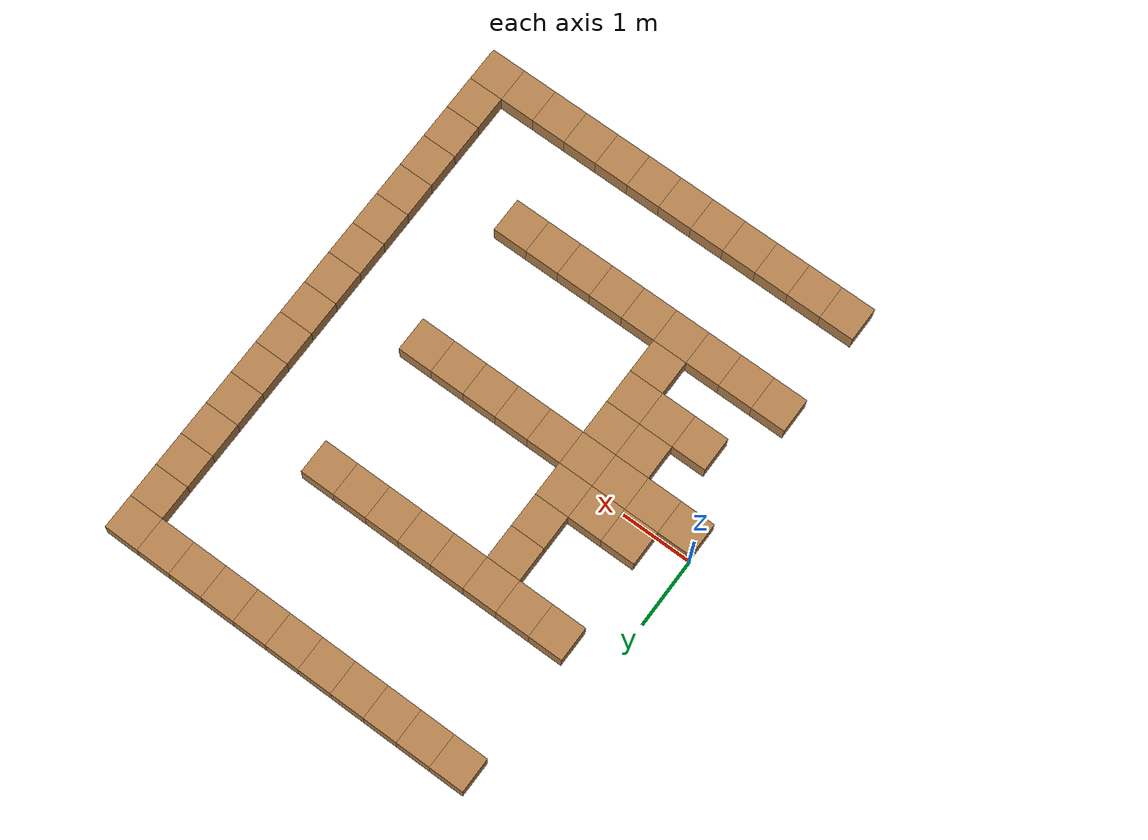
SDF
<sdf version="1.7">
 <world name="default">
  <model name="tile_0_13">
   <pose>0.75 3.75 0.15 0 0 0</pose>
   <static>true</static>
   <link name="link">
    <collision name="col"><geometry><box><size>0.5 0.5 0.3</size></box></geometry></collision>
    <visual name="vis">
     <geometry><box><size>0.5 0.5 0.3</size></box></geometry>
     <material>
      <ambient>0.30 0.20 0.10 1</ambient>
      <diffuse>0.70 0.50 0.30 1</diffuse>
      <specular>0.10 0.10 0.10 1</specular>
     </material>
    </visual>
   </link>
  </model>
  <model name="tile_0_14">
   <pose>1.25 3.75 0.15 0 0 0</pose>
   <static>true</static>
   <link name="link">
    <collision name="col"><geometry><box><size>0.5 0.5 0.3</size></box></geometry></collision>
    <visual name="vis">
     <geometry><box><size>0.5 0.5 0.3</size></box></geometry>
     <material>
      <ambient>0.30 0.20 0.10 1</ambient>
      <diffuse>0.70 0.50 0.30 1</diffuse>
      <specular>0.10 0.10 0.10 1</specular>
     </material>
    </visual>
   </link>
  </model>
  <model name="tile_0_15">
   <pose>1.75 3.75 0.15 0 0 0</pose>
   <static>true</static>
   <link name="link">
    <collision name="col"><geometry><box><size>0.5 0.5 0.3</size></box></geometry></collision>
    <visual name="vis">
     <geometry><box><size>0.5 0.5 0.3</size></box></geometry>
     <material>
      <ambient>0.30 0.20 0.10 1</ambient>
      <diffuse>0.70 0.50 0.30 1</diffuse>
      <specular>0.10 0.10 0.10 1</specular>
     </material>
    </visual>
   </link>
  </model>
  <model name="tile_0_16">
   <pose>2.25 3.75 0.15 0 0 0</pose>
   <static>true</static>
   <link name="link">
    <collision name="col"><geometry><box><size>0.5 0.5 0.3</size></box></geometry></collision>
    <visual name="vis">
     <geometry><box><size>0.5 0.5 0.3</size></box></geometry>
     <material>
      <ambient>0.30 0.20 0.10 1</ambient>
      <diffuse>0.70 0.50 0.30 1</diffuse>
      <specular>0.10 0.10 0.10 1</specular>
     </material>
    </visual>
   </link>
  </model>
  <model name="tile_0_17">
   <pose>2.75 3.75 0.15 0 0 0</pose>
   <static>true</static>
   <link name="link">
    <collision name="col"><geometry><box><size>0.5 0.5 0.3</size></box></geometry></collision>
    <visual name="vis">
     <geometry><box><size>0.5 0.5 0.3</size></box></geometry>
     <material>
      <ambient>0.30 0.20 0.10 1</ambient>
      <diffuse>0.70 0.50 0.30 1</diffuse>
      <specular>0.10 0.10 0.10 1</specular>
     </material>
    </visual>
   </link>
  </model>
  <model name="tile_0_18">
   <pose>3.25 3.75 0.15 0 0 0</pose>
   <static>true</static>
   <link name="link">
    <collision name="col"><geometry><box><size>0.5 0.5 0.3</size></box></geometry></collision>
    <visual name="vis">
     <geometry><box><size>0.5 0.5 0.3</size></box></geometry>
     <material>
      <ambient>0.30 0.20 0.10 1</ambient>
      <diffuse>0.70 0.50 0.30 1</diffuse>
      <specular>0.10 0.10 0.10 1</specular>
     </material>
    </visual>
   </link>
  </model>
  <model name="tile_0_19">
   <pose>3.75 3.75 0.15 0 0 0</pose>
   <static>true</static>
   <link name="link">
    <collision name="col"><geometry><box><size>0.5 0.5 0.3</size></box></geometry></collision>
    <visual name="vis">
     <geometry><box><size>0.5 0.5 0.3</size></box></geometry>
     <material>
      <ambient>0.30 0.20 0.10 1</ambient>
      <diffuse>0.70 0.50 0.30 1</diffuse>
      <specular>0.10 0.10 0.10 1</specular>
     </material>
    </visual>
   </link>
  </model>
  <model name="tile_0_20">
   <pose>4.25 3.75 0.15 0 0 0</pose>
   <static>true</static>
   <link name="link">
    <collision name="col"><geometry><box><size>0.5 0.5 0.3</size></box></geometry></collision>
    <visual name="vis">
     <geometry><box><size>0.5 0.5 0.3</size></box></geometry>
     <material>
      <ambient>0.30 0.20 0.10 1</ambient>
      <diffuse>0.70 0.50 0.30 1</diffuse>
      <specular>0.10 0.10 0.10 1</specular>
     </material>
    </visual>
   </link>
  </model>
  <model name="tile_0_21">
   <pose>4.75 3.75 0.15 0 0 0</pose>
   <static>true</static>
   <link name="link">
    <collision name="col"><geometry><box><size>0.5 0.5 0.3</size></box></geometry></collision>
    <visual name="vis">
     <geometry><box><size>0.5 0.5 0.3</size></box></geometry>
     <material>
      <ambient>0.30 0.20 0.10 1</ambient>
      <diffuse>0.70 0.50 0.30 1</diffuse>
      <specular>0.10 0.10 0.10 1</specular>
     </material>
    </visual>
   </link>
  </model>
  <model name="tile_0_22">
   <pose>5.25 3.75 0.15 0 0 0</pose>
   <static>true</static>
   <link name="link">
    <collision name="col"><geometry><box><size>0.5 0.5 0.3</size></box></geometry></collision>
    <visual name="vis">
     <geometry><box><size>0.5 0.5 0.3</size></box></geometry>
     <material>
      <ambient>0.30 0.20 0.10 1</ambient>
      <diffuse>0.70 0.50 0.30 1</diffuse>
      <specular>0.10 0.10 0.10 1</specular>
     </material>
    </visual>
   </link>
  </model>
  <model name="tile_0_23">
   <pose>5.75 3.75 0.15 0 0 0</pose>
   <static>true</static>
   <link name="link">
    <collision name="col"><geometry><box><size>0.5 0.5 0.3</size></box></geometry></collision>
    <visual name="vis">
     <geometry><box><size>0.5 0.5 0.3</size></box></geometry>
     <material>
      <ambient>0.30 0.20 0.10 1</ambient>
      <diffuse>0.70 0.50 0.30 1</diffuse>
      <specular>0.10 0.10 0.10 1</specular>
     </material>
    </visual>
   </link>
  </model>
  <model name="tile_1_23">
   <pose>5.75 3.25 0.15 0 0 0</pose>
   <static>true</static>
   <link name="link">
    <collision name="col"><geometry><box><size>0.5 0.5 0.3</size></box></geometry></collision>
    <visual name="vis">
     <geometry><box><size>0.5 0.5 0.3</size></box></geometry>
     <material>
      <ambient>0.30 0.20 0.10 1</ambient>
      <diffuse>0.70 0.50 0.30 1</diffuse>
      <specular>0.10 0.10 0.10 1</specular>
     </material>
    </visual>
   </link>
  </model>
  <model name="tile_2_23">
   <pose>5.75 2.75 0.15 0 0 0</pose>
   <static>true</static>
   <link name="link">
    <collision name="col"><geometry><box><size>0.5 0.5 0.3</size></box></geometry></collision>
    <visual name="vis">
     <geometry><box><size>0.5 0.5 0.3</size></box></geometry>
     <material>
      <ambient>0.30 0.20 0.10 1</ambient>
      <diffuse>0.70 0.50 0.30 1</diffuse>
      <specular>0.10 0.10 0.10 1</specular>
     </material>
    </visual>
   </link>
  </model>
  <model name="tile_3_23">
   <pose>5.75 2.25 0.15 0 0 0</pose>
   <static>true</static>
   <link name="link">
    <collision name="col"><geometry><box><size>0.5 0.5 0.3</size></box></geometry></collision>
    <visual name="vis">
     <geometry><box><size>0.5 0.5 0.3</size></box></geometry>
     <material>
      <ambient>0.30 0.20 0.10 1</ambient>
      <diffuse>0.70 0.50 0.30 1</diffuse>
      <specular>0.10 0.10 0.10 1</specular>
     </material>
    </visual>
   </link>
  </model>
  <model name="tile_4_13">
   <pose>0.75 1.75 0.15 0 0 0</pose>
   <static>true</static>
   <link name="link">
    <collision name="col"><geometry><box><size>0.5 0.5 0.3</size></box></geometry></collision>
    <visual name="vis">
     <geometry><box><size>0.5 0.5 0.3</size></box></geometry>
     <material>
      <ambient>0.30 0.20 0.10 1</ambient>
      <diffuse>0.70 0.50 0.30 1</diffuse>
      <specular>0.10 0.10 0.10 1</specular>
     </material>
    </visual>
   </link>
  </model>
  <model name="tile_4_14">
   <pose>1.25 1.75 0.15 0 0 0</pose>
   <static>true</static>
   <link name="link">
    <collision name="col"><geometry><box><size>0.5 0.5 0.3</size></box></geometry></collision>
    <visual name="vis">
     <geometry><box><size>0.5 0.5 0.3</size></box></geometry>
     <material>
      <ambient>0.30 0.20 0.10 1</ambient>
      <diffuse>0.70 0.50 0.30 1</diffuse>
      <specular>0.10 0.10 0.10 1</specular>
     </material>
    </visual>
   </link>
  </model>
  <model name="tile_4_15">
   <pose>1.75 1.75 0.15 0 0 0</pose>
   <static>true</static>
   <link name="link">
    <collision name="col"><geometry><box><size>0.5 0.5 0.3</size></box></geometry></collision>
    <visual name="vis">
     <geometry><box><size>0.5 0.5 0.3</size></box></geometry>
     <material>
      <ambient>0.30 0.20 0.10 1</ambient>
      <diffuse>0.70 0.50 0.30 1</diffuse>
      <specular>0.10 0.10 0.10 1</specular>
     </material>
    </visual>
   </link>
  </model>
  <model name="tile_4_16">
   <pose>2.25 1.75 0.15 0 0 0</pose>
   <static>true</static>
   <link name="link">
    <collision name="col"><geometry><box><size>0.5 0.5 0.3</size></box></geometry></collision>
    <visual name="vis">
     <geometry><box><size>0.5 0.5 0.3</size></box></geometry>
     <material>
      <ambient>0.30 0.20 0.10 1</ambient>
      <diffuse>0.70 0.50 0.30 1</diffuse>
      <specular>0.10 0.10 0.10 1</specular>
     </material>
    </visual>
   </link>
  </model>
  <model name="tile_4_17">
   <pose>2.75 1.75 0.15 0 0 0</pose>
   <static>true</static>
   <link name="link">
    <collision name="col"><geometry><box><size>0.5 0.5 0.3</size></box></geometry></collision>
    <visual name="vis">
     <geometry><box><size>0.5 0.5 0.3</size></box></geometry>
     <material>
      <ambient>0.30 0.20 0.10 1</ambient>
      <diffuse>0.70 0.50 0.30 1</diffuse>
      <specular>0.10 0.10 0.10 1</specular>
     </material>
    </visual>
   </link>
  </model>
  <model name="tile_4_18">
   <pose>3.25 1.75 0.15 0 0 0</pose>
   <static>true</static>
   <link name="link">
    <collision name="col"><geometry><box><size>0.5 0.5 0.3</size></box></geometry></collision>
    <visual name="vis">
     <geometry><box><size>0.5 0.5 0.3</size></box></geometry>
     <material>
      <ambient>0.30 0.20 0.10 1</ambient>
      <diffuse>0.70 0.50 0.30 1</diffuse>
      <specular>0.10 0.10 0.10 1</specular>
     </material>
    </visual>
   </link>
  </model>
  <model name="tile_4_19">
   <pose>3.75 1.75 0.15 0 0 0</pose>
   <static>true</static>
   <link name="link">
    <collision name="col"><geometry><box><size>0.5 0.5 0.3</size></box></geometry></collision>
    <visual name="vis">
     <geometry><box><size>0.5 0.5 0.3</size></box></geometry>
     <material>
      <ambient>0.30 0.20 0.10 1</ambient>
      <diffuse>0.70 0.50 0.30 1</diffuse>
      <specular>0.10 0.10 0.10 1</specular>
     </material>
    </visual>
   </link>
  </model>
  <model name="tile_4_20">
   <pose>4.25 1.75 0.15 0 0 0</pose>
   <static>true</static>
   <link name="link">
    <collision name="col"><geometry><box><size>0.5 0.5 0.3</size></box></geometry></collision>
    <visual name="vis">
     <geometry><box><size>0.5 0.5 0.3</size></box></geometry>
     <material>
      <ambient>0.30 0.20 0.10 1</ambient>
      <diffuse>0.70 0.50 0.30 1</diffuse>
      <specular>0.10 0.10 0.10 1</specular>
     </material>
    </visual>
   </link>
  </model>
  <model name="tile_4_23">
   <pose>5.75 1.75 0.15 0 0 0</pose>
   <static>true</static>
   <link name="link">
    <collision name="col"><geometry><box><size>0.5 0.5 0.3</size></box></geometry></collision>
    <visual name="vis">
     <geometry><box><size>0.5 0.5 0.3</size></box></geometry>
     <material>
      <ambient>0.30 0.20 0.10 1</ambient>
      <diffuse>0.70 0.50 0.30 1</diffuse>
      <specular>0.10 0.10 0.10 1</specular>
     </material>
    </visual>
   </link>
  </model>
  <model name="tile_5_15">
   <pose>1.75 1.25 0.15 0 0 0</pose>
   <static>true</static>
   <link name="link">
    <collision name="col"><geometry><box><size>0.5 0.5 0.3</size></box></geometry></collision>
    <visual name="vis">
     <geometry><box><size>0.5 0.5 0.3</size></box></geometry>
     <material>
      <ambient>0.30 0.20 0.10 1</ambient>
      <diffuse>0.70 0.50 0.30 1</diffuse>
      <specular>0.10 0.10 0.10 1</specular>
     </material>
    </visual>
   </link>
  </model>
  <model name="tile_5_23">
   <pose>5.75 1.25 0.15 0 0 0</pose>
   <static>true</static>
   <link name="link">
    <collision name="col"><geometry><box><size>0.5 0.5 0.3</size></box></geometry></collision>
    <visual name="vis">
     <geometry><box><size>0.5 0.5 0.3</size></box></geometry>
     <material>
      <ambient>0.30 0.20 0.10 1</ambient>
      <diffuse>0.70 0.50 0.30 1</diffuse>
      <specular>0.10 0.10 0.10 1</specular>
     </material>
    </visual>
   </link>
  </model>
  <model name="tile_6_15">
   <pose>1.75 0.75 0.15 0 0 0</pose>
   <static>true</static>
   <link name="link">
    <collision name="col"><geometry><box><size>0.5 0.5 0.3</size></box></geometry></collision>
    <visual name="vis">
     <geometry><box><size>0.5 0.5 0.3</size></box></geometry>
     <material>
      <ambient>0.30 0.20 0.10 1</ambient>
      <diffuse>0.70 0.50 0.30 1</diffuse>
      <specular>0.10 0.10 0.10 1</specular>
     </material>
    </visual>
   </link>
  </model>
  <model name="tile_6_23">
   <pose>5.75 0.75 0.15 0 0 0</pose>
   <static>true</static>
   <link name="link">
    <collision name="col"><geometry><box><size>0.5 0.5 0.3</size></box></geometry></collision>
    <visual name="vis">
     <geometry><box><size>0.5 0.5 0.3</size></box></geometry>
     <material>
      <ambient>0.30 0.20 0.10 1</ambient>
      <diffuse>0.70 0.50 0.30 1</diffuse>
      <specular>0.10 0.10 0.10 1</specular>
     </material>
    </visual>
   </link>
  </model>
  <model name="tile_7_13">
   <pose>0.75 0.25 0.15 0 0 0</pose>
   <static>true</static>
   <link name="link">
    <collision name="col"><geometry><box><size>0.5 0.5 0.3</size></box></geometry></collision>
    <visual name="vis">
     <geometry><box><size>0.5 0.5 0.3</size></box></geometry>
     <material>
      <ambient>0.30 0.20 0.10 1</ambient>
      <diffuse>0.70 0.50 0.30 1</diffuse>
      <specular>0.10 0.10 0.10 1</specular>
     </material>
    </visual>
   </link>
  </model>
  <model name="tile_7_14">
   <pose>1.25 0.25 0.15 0 0 0</pose>
   <static>true</static>
   <link name="link">
    <collision name="col"><geometry><box><size>0.5 0.5 0.3</size></box></geometry></collision>
    <visual name="vis">
     <geometry><box><size>0.5 0.5 0.3</size></box></geometry>
     <material>
      <ambient>0.30 0.20 0.10 1</ambient>
      <diffuse>0.70 0.50 0.30 1</diffuse>
      <specular>0.10 0.10 0.10 1</specular>
     </material>
    </visual>
   </link>
  </model>
  <model name="tile_7_15">
   <pose>1.75 0.25 0.15 0 0 0</pose>
   <static>true</static>
   <link name="link">
    <collision name="col"><geometry><box><size>0.5 0.5 0.3</size></box></geometry></collision>
    <visual name="vis">
     <geometry><box><size>0.5 0.5 0.3</size></box></geometry>
     <material>
      <ambient>0.30 0.20 0.10 1</ambient>
      <diffuse>0.70 0.50 0.30 1</diffuse>
      <specular>0.10 0.10 0.10 1</specular>
     </material>
    </visual>
   </link>
  </model>
  <model name="tile_7_23">
   <pose>5.75 0.25 0.15 0 0 0</pose>
   <static>true</static>
   <link name="link">
    <collision name="col"><geometry><box><size>0.5 0.5 0.3</size></box></geometry></collision>
    <visual name="vis">
     <geometry><box><size>0.5 0.5 0.3</size></box></geometry>
     <material>
      <ambient>0.30 0.20 0.10 1</ambient>
      <diffuse>0.70 0.50 0.30 1</diffuse>
      <specular>0.10 0.10 0.10 1</specular>
     </material>
    </visual>
   </link>
  </model>
  <model name="tile_8_12">
   <pose>0.25 -0.25 0.15 0 0 0</pose>
   <static>true</static>
   <link name="link">
    <collision name="col"><geometry><box><size>0.5 0.5 0.3</size></box></geometry></collision>
    <visual name="vis">
     <geometry><box><size>0.5 0.5 0.3</size></box></geometry>
     <material>
      <ambient>0.30 0.20 0.10 1</ambient>
      <diffuse>0.70 0.50 0.30 1</diffuse>
      <specular>0.10 0.10 0.10 1</specular>
     </material>
    </visual>
   </link>
  </model>
  <model name="tile_8_13">
   <pose>0.75 -0.25 0.15 0 0 0</pose>
   <static>true</static>
   <link name="link">
    <collision name="col"><geometry><box><size>0.5 0.5 0.3</size></box></geometry></collision>
    <visual name="vis">
     <geometry><box><size>0.5 0.5 0.3</size></box></geometry>
     <material>
      <ambient>0.30 0.20 0.10 1</ambient>
      <diffuse>0.70 0.50 0.30 1</diffuse>
      <specular>0.10 0.10 0.10 1</specular>
     </material>
    </visual>
   </link>
  </model>
  <model name="tile_8_14">
   <pose>1.25 -0.25 0.15 0 0 0</pose>
   <static>true</static>
   <link name="link">
    <collision name="col"><geometry><box><size>0.5 0.5 0.3</size></box></geometry></collision>
    <visual name="vis">
     <geometry><box><size>0.5 0.5 0.3</size></box></geometry>
     <material>
      <ambient>0.30 0.20 0.10 1</ambient>
      <diffuse>0.70 0.50 0.30 1</diffuse>
      <specular>0.10 0.10 0.10 1</specular>
     </material>
    </visual>
   </link>
  </model>
  <model name="tile_8_15">
   <pose>1.75 -0.25 0.15 0 0 0</pose>
   <static>true</static>
   <link name="link">
    <collision name="col"><geometry><box><size>0.5 0.5 0.3</size></box></geometry></collision>
    <visual name="vis">
     <geometry><box><size>0.5 0.5 0.3</size></box></geometry>
     <material>
      <ambient>0.30 0.20 0.10 1</ambient>
      <diffuse>0.70 0.50 0.30 1</diffuse>
      <specular>0.10 0.10 0.10 1</specular>
     </material>
    </visual>
   </link>
  </model>
  <model name="tile_8_16">
   <pose>2.25 -0.25 0.15 0 0 0</pose>
   <static>true</static>
   <link name="link">
    <collision name="col"><geometry><box><size>0.5 0.5 0.3</size></box></geometry></collision>
    <visual name="vis">
     <geometry><box><size>0.5 0.5 0.3</size></box></geometry>
     <material>
      <ambient>0.30 0.20 0.10 1</ambient>
      <diffuse>0.70 0.50 0.30 1</diffuse>
      <specular>0.10 0.10 0.10 1</specular>
     </material>
    </visual>
   </link>
  </model>
  <model name="tile_8_17">
   <pose>2.75 -0.25 0.15 0 0 0</pose>
   <static>true</static>
   <link name="link">
    <collision name="col"><geometry><box><size>0.5 0.5 0.3</size></box></geometry></collision>
    <visual name="vis">
     <geometry><box><size>0.5 0.5 0.3</size></box></geometry>
     <material>
      <ambient>0.30 0.20 0.10 1</ambient>
      <diffuse>0.70 0.50 0.30 1</diffuse>
      <specular>0.10 0.10 0.10 1</specular>
     </material>
    </visual>
   </link>
  </model>
  <model name="tile_8_18">
   <pose>3.25 -0.25 0.15 0 0 0</pose>
   <static>true</static>
   <link name="link">
    <collision name="col"><geometry><box><size>0.5 0.5 0.3</size></box></geometry></collision>
    <visual name="vis">
     <geometry><box><size>0.5 0.5 0.3</size></box></geometry>
     <material>
      <ambient>0.30 0.20 0.10 1</ambient>
      <diffuse>0.70 0.50 0.30 1</diffuse>
      <specular>0.10 0.10 0.10 1</specular>
     </material>
    </visual>
   </link>
  </model>
  <model name="tile_8_19">
   <pose>3.75 -0.25 0.15 0 0 0</pose>
   <static>true</static>
   <link name="link">
    <collision name="col"><geometry><box><size>0.5 0.5 0.3</size></box></geometry></collision>
    <visual name="vis">
     <geometry><box><size>0.5 0.5 0.3</size></box></geometry>
     <material>
      <ambient>0.30 0.20 0.10 1</ambient>
      <diffuse>0.70 0.50 0.30 1</diffuse>
      <specular>0.10 0.10 0.10 1</specular>
     </material>
    </visual>
   </link>
  </model>
  <model name="tile_8_20">
   <pose>4.25 -0.25 0.15 0 0 0</pose>
   <static>true</static>
   <link name="link">
    <collision name="col"><geometry><box><size>0.5 0.5 0.3</size></box></geometry></collision>
    <visual name="vis">
     <geometry><box><size>0.5 0.5 0.3</size></box></geometry>
     <material>
      <ambient>0.30 0.20 0.10 1</ambient>
      <diffuse>0.70 0.50 0.30 1</diffuse>
      <specular>0.10 0.10 0.10 1</specular>
     </material>
    </visual>
   </link>
  </model>
  <model name="tile_8_23">
   <pose>5.75 -0.25 0.15 0 0 0</pose>
   <static>true</static>
   <link name="link">
    <collision name="col"><geometry><box><size>0.5 0.5 0.3</size></box></geometry></collision>
    <visual name="vis">
     <geometry><box><size>0.5 0.5 0.3</size></box></geometry>
     <material>
      <ambient>0.30 0.20 0.10 1</ambient>
      <diffuse>0.70 0.50 0.30 1</diffuse>
      <specular>0.10 0.10 0.10 1</specular>
     </material>
    </visual>
   </link>
  </model>
  <model name="tile_9_14">
   <pose>1.25 -0.75 0.15 0 0 0</pose>
   <static>true</static>
   <link name="link">
    <collision name="col"><geometry><box><size>0.5 0.5 0.3</size></box></geometry></collision>
    <visual name="vis">
     <geometry><box><size>0.5 0.5 0.3</size></box></geometry>
     <material>
      <ambient>0.30 0.20 0.10 1</ambient>
      <diffuse>0.70 0.50 0.30 1</diffuse>
      <specular>0.10 0.10 0.10 1</specular>
     </material>
    </visual>
   </link>
  </model>
  <model name="tile_9_15">
   <pose>1.75 -0.75 0.15 0 0 0</pose>
   <static>true</static>
   <link name="link">
    <collision name="col"><geometry><box><size>0.5 0.5 0.3</size></box></geometry></collision>
    <visual name="vis">
     <geometry><box><size>0.5 0.5 0.3</size></box></geometry>
     <material>
      <ambient>0.30 0.20 0.10 1</ambient>
      <diffuse>0.70 0.50 0.30 1</diffuse>
      <specular>0.10 0.10 0.10 1</specular>
     </material>
    </visual>
   </link>
  </model>
  <model name="tile_9_23">
   <pose>5.75 -0.75 0.15 0 0 0</pose>
   <static>true</static>
   <link name="link">
    <collision name="col"><geometry><box><size>0.5 0.5 0.3</size></box></geometry></collision>
    <visual name="vis">
     <geometry><box><size>0.5 0.5 0.3</size></box></geometry>
     <material>
      <ambient>0.30 0.20 0.10 1</ambient>
      <diffuse>0.70 0.50 0.30 1</diffuse>
      <specular>0.10 0.10 0.10 1</specular>
     </material>
    </visual>
   </link>
  </model>
  <model name="tile_10_13">
   <pose>0.75 -1.25 0.15 0 0 0</pose>
   <static>true</static>
   <link name="link">
    <collision name="col"><geometry><box><size>0.5 0.5 0.3</size></box></geometry></collision>
    <visual name="vis">
     <geometry><box><size>0.5 0.5 0.3</size></box></geometry>
     <material>
      <ambient>0.30 0.20 0.10 1</ambient>
      <diffuse>0.70 0.50 0.30 1</diffuse>
      <specular>0.10 0.10 0.10 1</specular>
     </material>
    </visual>
   </link>
  </model>
  <model name="tile_10_14">
   <pose>1.25 -1.25 0.15 0 0 0</pose>
   <static>true</static>
   <link name="link">
    <collision name="col"><geometry><box><size>0.5 0.5 0.3</size></box></geometry></collision>
    <visual name="vis">
     <geometry><box><size>0.5 0.5 0.3</size></box></geometry>
     <material>
      <ambient>0.30 0.20 0.10 1</ambient>
      <diffuse>0.70 0.50 0.30 1</diffuse>
      <specular>0.10 0.10 0.10 1</specular>
     </material>
    </visual>
   </link>
  </model>
  <model name="tile_10_15">
   <pose>1.75 -1.25 0.15 0 0 0</pose>
   <static>true</static>
   <link name="link">
    <collision name="col"><geometry><box><size>0.5 0.5 0.3</size></box></geometry></collision>
    <visual name="vis">
     <geometry><box><size>0.5 0.5 0.3</size></box></geometry>
     <material>
      <ambient>0.30 0.20 0.10 1</ambient>
      <diffuse>0.70 0.50 0.30 1</diffuse>
      <specular>0.10 0.10 0.10 1</specular>
     </material>
    </visual>
   </link>
  </model>
  <model name="tile_10_23">
   <pose>5.75 -1.25 0.15 0 0 0</pose>
   <static>true</static>
   <link name="link">
    <collision name="col"><geometry><box><size>0.5 0.5 0.3</size></box></geometry></collision>
    <visual name="vis">
     <geometry><box><size>0.5 0.5 0.3</size></box></geometry>
     <material>
      <ambient>0.30 0.20 0.10 1</ambient>
      <diffuse>0.70 0.50 0.30 1</diffuse>
      <specular>0.10 0.10 0.10 1</specular>
     </material>
    </visual>
   </link>
  </model>
  <model name="tile_11_15">
   <pose>1.75 -1.75 0.15 0 0 0</pose>
   <static>true</static>
   <link name="link">
    <collision name="col"><geometry><box><size>0.5 0.5 0.3</size></box></geometry></collision>
    <visual name="vis">
     <geometry><box><size>0.5 0.5 0.3</size></box></geometry>
     <material>
      <ambient>0.30 0.20 0.10 1</ambient>
      <diffuse>0.70 0.50 0.30 1</diffuse>
      <specular>0.10 0.10 0.10 1</specular>
     </material>
    </visual>
   </link>
  </model>
  <model name="tile_11_23">
   <pose>5.75 -1.75 0.15 0 0 0</pose>
   <static>true</static>
   <link name="link">
    <collision name="col"><geometry><box><size>0.5 0.5 0.3</size></box></geometry></collision>
    <visual name="vis">
     <geometry><box><size>0.5 0.5 0.3</size></box></geometry>
     <material>
      <ambient>0.30 0.20 0.10 1</ambient>
      <diffuse>0.70 0.50 0.30 1</diffuse>
      <specular>0.10 0.10 0.10 1</specular>
     </material>
    </visual>
   </link>
  </model>
  <model name="tile_12_12">
   <pose>0.25 -2.25 0.15 0 0 0</pose>
   <static>true</static>
   <link name="link">
    <collision name="col"><geometry><box><size>0.5 0.5 0.3</size></box></geometry></collision>
    <visual name="vis">
     <geometry><box><size>0.5 0.5 0.3</size></box></geometry>
     <material>
      <ambient>0.30 0.20 0.10 1</ambient>
      <diffuse>0.70 0.50 0.30 1</diffuse>
      <specular>0.10 0.10 0.10 1</specular>
     </material>
    </visual>
   </link>
  </model>
  <model name="tile_12_13">
   <pose>0.75 -2.25 0.15 0 0 0</pose>
   <static>true</static>
   <link name="link">
    <collision name="col"><geometry><box><size>0.5 0.5 0.3</size></box></geometry></collision>
    <visual name="vis">
     <geometry><box><size>0.5 0.5 0.3</size></box></geometry>
     <material>
      <ambient>0.30 0.20 0.10 1</ambient>
      <diffuse>0.70 0.50 0.30 1</diffuse>
      <specular>0.10 0.10 0.10 1</specular>
     </material>
    </visual>
   </link>
  </model>
  <model name="tile_12_14">
   <pose>1.25 -2.25 0.15 0 0 0</pose>
   <static>true</static>
   <link name="link">
    <collision name="col"><geometry><box><size>0.5 0.5 0.3</size></box></geometry></collision>
    <visual name="vis">
     <geometry><box><size>0.5 0.5 0.3</size></box></geometry>
     <material>
      <ambient>0.30 0.20 0.10 1</ambient>
      <diffuse>0.70 0.50 0.30 1</diffuse>
      <specular>0.10 0.10 0.10 1</specular>
     </material>
    </visual>
   </link>
  </model>
  <model name="tile_12_15">
   <pose>1.75 -2.25 0.15 0 0 0</pose>
   <static>true</static>
   <link name="link">
    <collision name="col"><geometry><box><size>0.5 0.5 0.3</size></box></geometry></collision>
    <visual name="vis">
     <geometry><box><size>0.5 0.5 0.3</size></box></geometry>
     <material>
      <ambient>0.30 0.20 0.10 1</ambient>
      <diffuse>0.70 0.50 0.30 1</diffuse>
      <specular>0.10 0.10 0.10 1</specular>
     </material>
    </visual>
   </link>
  </model>
  <model name="tile_12_16">
   <pose>2.25 -2.25 0.15 0 0 0</pose>
   <static>true</static>
   <link name="link">
    <collision name="col"><geometry><box><size>0.5 0.5 0.3</size></box></geometry></collision>
    <visual name="vis">
     <geometry><box><size>0.5 0.5 0.3</size></box></geometry>
     <material>
      <ambient>0.30 0.20 0.10 1</ambient>
      <diffuse>0.70 0.50 0.30 1</diffuse>
      <specular>0.10 0.10 0.10 1</specular>
     </material>
    </visual>
   </link>
  </model>
  <model name="tile_12_17">
   <pose>2.75 -2.25 0.15 0 0 0</pose>
   <static>true</static>
   <link name="link">
    <collision name="col"><geometry><box><size>0.5 0.5 0.3</size></box></geometry></collision>
    <visual name="vis">
     <geometry><box><size>0.5 0.5 0.3</size></box></geometry>
     <material>
      <ambient>0.30 0.20 0.10 1</ambient>
      <diffuse>0.70 0.50 0.30 1</diffuse>
      <specular>0.10 0.10 0.10 1</specular>
     </material>
    </visual>
   </link>
  </model>
  <model name="tile_12_18">
   <pose>3.25 -2.25 0.15 0 0 0</pose>
   <static>true</static>
   <link name="link">
    <collision name="col"><geometry><box><size>0.5 0.5 0.3</size></box></geometry></collision>
    <visual name="vis">
     <geometry><box><size>0.5 0.5 0.3</size></box></geometry>
     <material>
      <ambient>0.30 0.20 0.10 1</ambient>
      <diffuse>0.70 0.50 0.30 1</diffuse>
      <specular>0.10 0.10 0.10 1</specular>
     </material>
    </visual>
   </link>
  </model>
  <model name="tile_12_19">
   <pose>3.75 -2.25 0.15 0 0 0</pose>
   <static>true</static>
   <link name="link">
    <collision name="col"><geometry><box><size>0.5 0.5 0.3</size></box></geometry></collision>
    <visual name="vis">
     <geometry><box><size>0.5 0.5 0.3</size></box></geometry>
     <material>
      <ambient>0.30 0.20 0.10 1</ambient>
      <diffuse>0.70 0.50 0.30 1</diffuse>
      <specular>0.10 0.10 0.10 1</specular>
     </material>
    </visual>
   </link>
  </model>
  <model name="tile_12_20">
   <pose>4.25 -2.25 0.15 0 0 0</pose>
   <static>true</static>
   <link name="link">
    <collision name="col"><geometry><box><size>0.5 0.5 0.3</size></box></geometry></collision>
    <visual name="vis">
     <geometry><box><size>0.5 0.5 0.3</size></box></geometry>
     <material>
      <ambient>0.30 0.20 0.10 1</ambient>
      <diffuse>0.70 0.50 0.30 1</diffuse>
      <specular>0.10 0.10 0.10 1</specular>
     </material>
    </visual>
   </link>
  </model>
  <model name="tile_12_23">
   <pose>5.75 -2.25 0.15 0 0 0</pose>
   <static>true</static>
   <link name="link">
    <collision name="col"><geometry><box><size>0.5 0.5 0.3</size></box></geometry></collision>
    <visual name="vis">
     <geometry><box><size>0.5 0.5 0.3</size></box></geometry>
     <material>
      <ambient>0.30 0.20 0.10 1</ambient>
      <diffuse>0.70 0.50 0.30 1</diffuse>
      <specular>0.10 0.10 0.10 1</specular>
     </material>
    </visual>
   </link>
  </model>
  <model name="tile_13_23">
   <pose>5.75 -2.75 0.15 0 0 0</pose>
   <static>true</static>
   <link name="link">
    <collision name="col"><geometry><box><size>0.5 0.5 0.3</size></box></geometry></collision>
    <visual name="vis">
     <geometry><box><size>0.5 0.5 0.3</size></box></geometry>
     <material>
      <ambient>0.30 0.20 0.10 1</ambient>
      <diffuse>0.70 0.50 0.30 1</diffuse>
      <specular>0.10 0.10 0.10 1</specular>
     </material>
    </visual>
   </link>
  </model>
  <model name="tile_14_23">
   <pose>5.75 -3.25 0.15 0 0 0</pose>
   <static>true</static>
   <link name="link">
    <collision name="col"><geometry><box><size>0.5 0.5 0.3</size></box></geometry></collision>
    <visual name="vis">
     <geometry><box><size>0.5 0.5 0.3</size></box></geometry>
     <material>
      <ambient>0.30 0.20 0.10 1</ambient>
      <diffuse>0.70 0.50 0.30 1</diffuse>
      <specular>0.10 0.10 0.10 1</specular>
     </material>
    </visual>
   </link>
  </model>
  <model name="tile_15_12">
   <pose>0.25 -3.75 0.15 0 0 0</pose>
   <static>true</static>
   <link name="link">
    <collision name="col"><geometry><box><size>0.5 0.5 0.3</size></box></geometry></collision>
    <visual name="vis">
     <geometry><box><size>0.5 0.5 0.3</size></box></geometry>
     <material>
      <ambient>0.30 0.20 0.10 1</ambient>
      <diffuse>0.70 0.50 0.30 1</diffuse>
      <specular>0.10 0.10 0.10 1</specular>
     </material>
    </visual>
   </link>
  </model>
  <model name="tile_15_13">
   <pose>0.75 -3.75 0.15 0 0 0</pose>
   <static>true</static>
   <link name="link">
    <collision name="col"><geometry><box><size>0.5 0.5 0.3</size></box></geometry></collision>
    <visual name="vis">
     <geometry><box><size>0.5 0.5 0.3</size></box></geometry>
     <material>
      <ambient>0.30 0.20 0.10 1</ambient>
      <diffuse>0.70 0.50 0.30 1</diffuse>
      <specular>0.10 0.10 0.10 1</specular>
     </material>
    </visual>
   </link>
  </model>
  <model name="tile_15_14">
   <pose>1.25 -3.75 0.15 0 0 0</pose>
   <static>true</static>
   <link name="link">
    <collision name="col"><geometry><box><size>0.5 0.5 0.3</size></box></geometry></collision>
    <visual name="vis">
     <geometry><box><size>0.5 0.5 0.3</size></box></geometry>
     <material>
      <ambient>0.30 0.20 0.10 1</ambient>
      <diffuse>0.70 0.50 0.30 1</diffuse>
      <specular>0.10 0.10 0.10 1</specular>
     </material>
    </visual>
   </link>
  </model>
  <model name="tile_15_15">
   <pose>1.75 -3.75 0.15 0 0 0</pose>
   <static>true</static>
   <link name="link">
    <collision name="col"><geometry><box><size>0.5 0.5 0.3</size></box></geometry></collision>
    <visual name="vis">
     <geometry><box><size>0.5 0.5 0.3</size></box></geometry>
     <material>
      <ambient>0.30 0.20 0.10 1</ambient>
      <diffuse>0.70 0.50 0.30 1</diffuse>
      <specular>0.10 0.10 0.10 1</specular>
     </material>
    </visual>
   </link>
  </model>
  <model name="tile_15_16">
   <pose>2.25 -3.75 0.15 0 0 0</pose>
   <static>true</static>
   <link name="link">
    <collision name="col"><geometry><box><size>0.5 0.5 0.3</size></box></geometry></collision>
    <visual name="vis">
     <geometry><box><size>0.5 0.5 0.3</size></box></geometry>
     <material>
      <ambient>0.30 0.20 0.10 1</ambient>
      <diffuse>0.70 0.50 0.30 1</diffuse>
      <specular>0.10 0.10 0.10 1</specular>
     </material>
    </visual>
   </link>
  </model>
  <model name="tile_15_17">
   <pose>2.75 -3.75 0.15 0 0 0</pose>
   <static>true</static>
   <link name="link">
    <collision name="col"><geometry><box><size>0.5 0.5 0.3</size></box></geometry></collision>
    <visual name="vis">
     <geometry><box><size>0.5 0.5 0.3</size></box></geometry>
     <material>
      <ambient>0.30 0.20 0.10 1</ambient>
      <diffuse>0.70 0.50 0.30 1</diffuse>
      <specular>0.10 0.10 0.10 1</specular>
     </material>
    </visual>
   </link>
  </model>
  <model name="tile_15_18">
   <pose>3.25 -3.75 0.15 0 0 0</pose>
   <static>true</static>
   <link name="link">
    <collision name="col"><geometry><box><size>0.5 0.5 0.3</size></box></geometry></collision>
    <visual name="vis">
     <geometry><box><size>0.5 0.5 0.3</size></box></geometry>
     <material>
      <ambient>0.30 0.20 0.10 1</ambient>
      <diffuse>0.70 0.50 0.30 1</diffuse>
      <specular>0.10 0.10 0.10 1</specular>
     </material>
    </visual>
   </link>
  </model>
  <model name="tile_15_19">
   <pose>3.75 -3.75 0.15 0 0 0</pose>
   <static>true</static>
   <link name="link">
    <collision name="col"><geometry><box><size>0.5 0.5 0.3</size></box></geometry></collision>
    <visual name="vis">
     <geometry><box><size>0.5 0.5 0.3</size></box></geometry>
     <material>
      <ambient>0.30 0.20 0.10 1</ambient>
      <diffuse>0.70 0.50 0.30 1</diffuse>
      <specular>0.10 0.10 0.10 1</specular>
     </material>
    </visual>
   </link>
  </model>
  <model name="tile_15_20">
   <pose>4.25 -3.75 0.15 0 0 0</pose>
   <static>true</static>
   <link name="link">
    <collision name="col"><geometry><box><size>0.5 0.5 0.3</size></box></geometry></collision>
    <visual name="vis">
     <geometry><box><size>0.5 0.5 0.3</size></box></geometry>
     <material>
      <ambient>0.30 0.20 0.10 1</ambient>
      <diffuse>0.70 0.50 0.30 1</diffuse>
      <specular>0.10 0.10 0.10 1</specular>
     </material>
    </visual>
   </link>
  </model>
  <model name="tile_15_21">
   <pose>4.75 -3.75 0.15 0 0 0</pose>
   <static>true</static>
   <link name="link">
    <collision name="col"><geometry><box><size>0.5 0.5 0.3</size></box></geometry></collision>
    <visual name="vis">
     <geometry><box><size>0.5 0.5 0.3</size></box></geometry>
     <material>
      <ambient>0.30 0.20 0.10 1</ambient>
      <diffuse>0.70 0.50 0.30 1</diffuse>
      <specular>0.10 0.10 0.10 1</specular>
     </material>
    </visual>
   </link>
  </model>
  <model name="tile_15_22">
   <pose>5.25 -3.75 0.15 0 0 0</pose>
   <static>true</static>
   <link name="link">
    <collision name="col"><geometry><box><size>0.5 0.5 0.3</size></box></geometry></collision>
    <visual name="vis">
     <geometry><box><size>0.5 0.5 0.3</size></box></geometry>
     <material>
      <ambient>0.30 0.20 0.10 1</ambient>
      <diffuse>0.70 0.50 0.30 1</diffuse>
      <specular>0.10 0.10 0.10 1</specular>
     </material>
    </visual>
   </link>
  </model>
  <model name="tile_15_23">
   <pose>5.75 -3.75 0.15 0 0 0</pose>
   <static>true</static>
   <link name="link">
    <collision name="col"><geometry><box><size>0.5 0.5 0.3</size></box></geometry></collision>
    <visual name="vis">
     <geometry><box><size>0.5 0.5 0.3</size></box></geometry>
     <material>
      <ambient>0.30 0.20 0.10 1</ambient>
      <diffuse>0.70 0.50 0.30 1</diffuse>
      <specular>0.10 0.10 0.10 1</specular>
     </material>
    </visual>
   </link>
  </model>
 </world>
</sdf>
